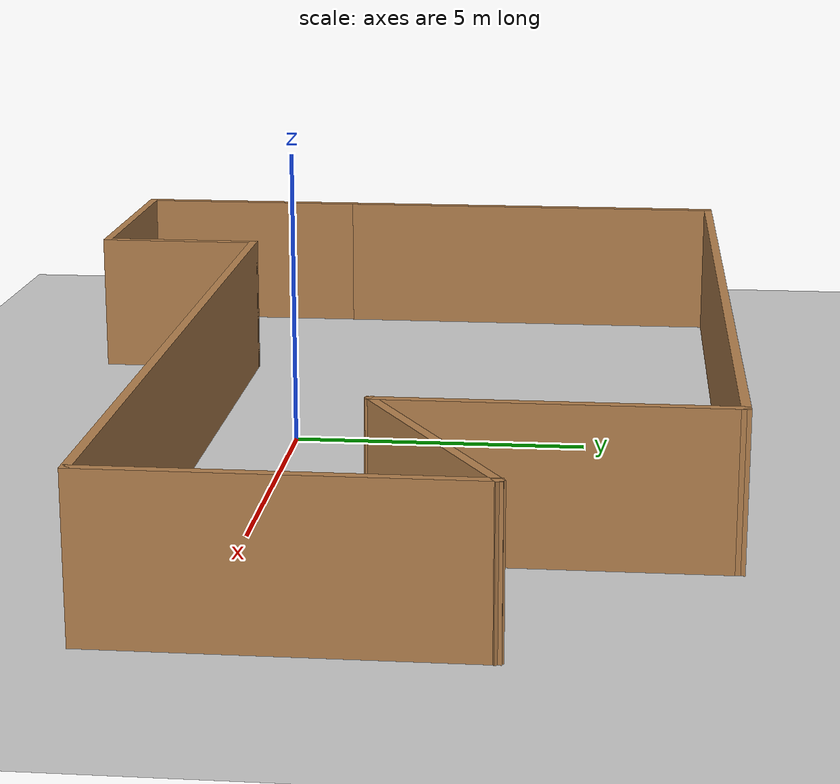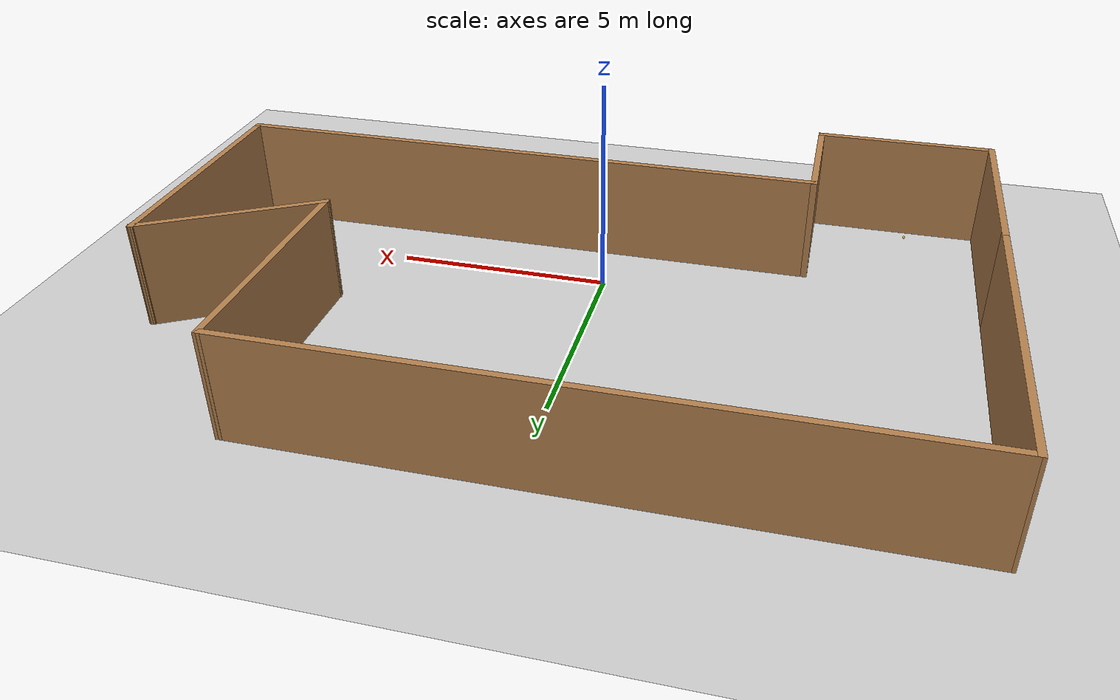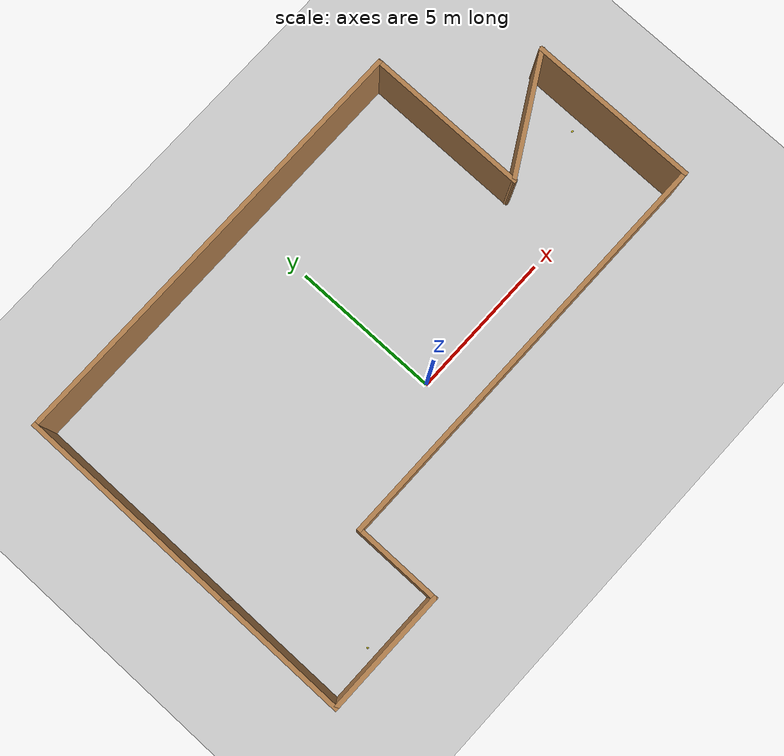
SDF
<sdf version="1.7">
 <world name="default">
  <light name="sun" type="directional">
   <pose>0 0 10 0 -0 0</pose>
   <diffuse>0.8 0.8 0.8 1</diffuse>
   <specular>0.2 0.2 0.2 1</specular>
   <attenuation>
    <range>1000</range>
    <constant>0.9</constant>
    <linear>0.01</linear>
    <quadratic>0.001</quadratic>
   </attenuation>
   <direction>-0.5 0.1 -0.9</direction>
   <spot><inner_angle>0</inner_angle><outer_angle>0</outer_angle><falloff>0</falloff></spot>
  </light>
  <model name="ground_plane">
   <static>1</static>
   <link name="link">
    <collision name="collision">
     <geometry><plane><normal>0 0 1</normal><size>100 100</size></plane></geometry>
     <surface>
      <contact><collide_bitmask>65535</collide_bitmask></contact>
      <friction><ode><mu>100</mu><mu2>50</mu2></ode></friction>
     </surface>
    </collision>
    <visual name="visual">
     <cast_shadows>0</cast_shadows>
     <geometry><plane><normal>0 0 1</normal><size>100 100</size></plane></geometry>
     <material>
      <script><uri>file://media/materials/scripts/gazebo.material</uri><name>Gazebo/Grey</name></script>
     </material>
    </visual>
   </link>
  </model>
  <gravity>0 0 -9.8</gravity>
  <magnetic_field>6e-06 2.3e-05 -4.2e-05</magnetic_field>
  <atmosphere type="adiabatic"/>
  <physics type="ode">
   <max_step_size>0.001</max_step_size>
   <real_time_factor>1</real_time_factor>
   <real_time_update_rate>1000</real_time_update_rate>
  </physics>
  <scene><ambient>0.4 0.4 0.4 1</ambient><background>0.7 0.7 0.7 1</background><shadows>1</shadows></scene>
  <audio><device>default</device></audio>
  <spherical_coordinates>
   <surface_model>EARTH_WGS84</surface_model>
   <latitude_deg>0</latitude_deg>
   <longitude_deg>0</longitude_deg>
   <elevation>0</elevation>
   <heading_deg>0</heading_deg>
  </spherical_coordinates>
  <model name="custom_room">
   <pose>0.374615 1.5009 0 0 -0 0</pose>
   <link name="Wall_10">
    <collision name="Wall_10_Collision">
     <geometry><box><size>14.25 0.15 2.5</size></box></geometry>
     <pose>0 0 1.25 0 -0 0</pose>
    </collision>
    <visual name="Wall_10_Visual">
     <pose>0 0 1.25 0 -0 0</pose>
     <geometry><box><size>14.25 0.15 2.5</size></box></geometry>
     <material>
      <script><uri>file://media/materials/scripts/gazebo.material</uri><name>Gazebo/Wood</name></script>
      <ambient>1 1 1 1</ambient>
     </material>
     <meta><layer>0</layer></meta>
    </visual>
    <pose>2.0364 -3.02513 0 0 -0 0</pose>
   </link>
   <link name="Wall_11">
    <collision name="Wall_11_Collision">
     <geometry><box><size>5.75 0.15 2.5</size></box></geometry>
     <pose>0 0 1.25 0 -0 0</pose>
    </collision>
    <visual name="Wall_11_Visual">
     <pose>0 0 1.25 0 -0 0</pose>
     <geometry><box><size>5.75 0.15 2.5</size></box></geometry>
     <material>
      <script><uri>file://media/materials/scripts/gazebo.material</uri><name>Gazebo/Wood</name></script>
      <ambient>1 1 1 1</ambient>
     </material>
     <meta><layer>0</layer></meta>
    </visual>
    <pose>9.0864 -0.225128 0 0 -0 1.5708</pose>
   </link>
   <link name="Wall_12">
    <collision name="Wall_12_Collision">
     <geometry><box><size>4.25 0.15 2.5</size></box></geometry>
     <pose>0 0 1.25 0 -0 0</pose>
    </collision>
    <visual name="Wall_12_Visual">
     <pose>0 0 1.25 0 -0 0</pose>
     <geometry><box><size>4.25 0.15 2.5</size></box></geometry>
     <material>
      <script><uri>file://media/materials/scripts/gazebo.material</uri><name>Gazebo/Wood</name></script>
      <ambient>1 1 1 1</ambient>
     </material>
     <meta><layer>0</layer></meta>
    </visual>
    <pose>7.31105 1.54987 0 0 -0 -2.61799</pose>
   </link>
   <link name="Wall_14">
    <collision name="Wall_14_Collision">
     <geometry><box><size>5.5 0.15 2.5</size></box></geometry>
     <pose>0 0 1.25 0 -0 0</pose>
    </collision>
    <visual name="Wall_14_Visual">
     <pose>0 0 1.25 0 -0 0</pose>
     <geometry><box><size>5.5 0.15 2.5</size></box></geometry>
     <material>
      <script><uri>file://media/materials/scripts/gazebo.material</uri><name>Gazebo/Wood</name></script>
      <ambient>1 1 1 1</ambient>
     </material>
     <meta><layer>0</layer></meta>
    </visual>
    <pose>5.5357 3.19987 0 0 -0 1.5708</pose>
   </link>
   <link name="Wall_18">
    <collision name="Wall_18_Collision">
     <geometry><box><size>7.5 0.15 2.5</size></box></geometry>
     <pose>0 0 1.25 0 -0 0</pose>
    </collision>
    <visual name="Wall_18_Visual">
     <pose>0 0 1.25 0 -0 0</pose>
     <geometry><box><size>7.5 0.15 2.5</size></box></geometry>
     <material>
      <script><uri>file://media/materials/scripts/gazebo.material</uri><name>Gazebo/Wood</name></script>
      <ambient>1 1 1 1</ambient>
     </material>
     <meta><layer>0</layer></meta>
    </visual>
    <pose>-9.1136 2.14987 0 0 -0 1.5708</pose>
   </link>
   <link name="Wall_19">
    <collision name="Wall_19_Collision">
     <geometry><box><size>14.7994 0.15 2.5</size></box></geometry>
     <pose>0 0 1.25 0 -0 0</pose>
    </collision>
    <visual name="Wall_19_Visual">
     <pose>0 0 1.25 0 -0 0</pose>
     <geometry><box><size>14.7994 0.15 2.5</size></box></geometry>
     <material>
      <script><uri>file://media/materials/scripts/gazebo.material</uri><name>Gazebo/Wood</name></script>
      <ambient>1 1 1 1</ambient>
     </material>
     <meta><layer>0</layer></meta>
    </visual>
    <pose>-1.78895 5.84987 0 0 -0 0.003413</pose>
   </link>
   <link name="Wall_6">
    <collision name="Wall_6_Collision">
     <geometry><box><size>4.5 0.15 2.5</size></box></geometry>
     <pose>0 0 1.25 0 -0 0</pose>
    </collision>
    <visual name="Wall_6_Visual">
     <pose>0 0 1.25 0 -0 0</pose>
     <geometry><box><size>4.5 0.15 2.5</size></box></geometry>
     <material>
      <script><uri>file://media/materials/scripts/gazebo.material</uri><name>Gazebo/Wood</name></script>
      <ambient>1 1 1 1</ambient>
     </material>
     <meta><layer>0</layer></meta>
    </visual>
    <pose>-9.1136 -3.70013 0 0 -0 -1.5708</pose>
   </link>
   <link name="Wall_8">
    <collision name="Wall_8_Collision">
     <geometry><box><size>4.25 0.15 2.5</size></box></geometry>
     <pose>0 0 1.25 0 -0 0</pose>
    </collision>
    <visual name="Wall_8_Visual">
     <pose>0 0 1.25 0 -0 0</pose>
     <geometry><box><size>4.25 0.15 2.5</size></box></geometry>
     <material>
      <script><uri>file://media/materials/scripts/gazebo.material</uri><name>Gazebo/Wood</name></script>
      <ambient>1 1 1 1</ambient>
     </material>
     <meta><layer>0</layer></meta>
    </visual>
    <pose>-7.0636 -5.87513 0 0 -0 0</pose>
   </link>
   <link name="Wall_9">
    <collision name="Wall_9_Collision">
     <geometry><box><size>3 0.15 2.5</size></box></geometry>
     <pose>0 0 1.25 0 -0 0</pose>
    </collision>
    <visual name="Wall_9_Visual">
     <pose>0 0 1.25 0 -0 0</pose>
     <geometry><box><size>3 0.15 2.5</size></box></geometry>
     <material>
      <script><uri>file://media/materials/scripts/gazebo.material</uri><name>Gazebo/Wood</name></script>
      <ambient>1 1 1 1</ambient>
     </material>
     <meta><layer>0</layer></meta>
    </visual>
    <pose>-5.0136 -4.45013 0 0 -0 1.5708</pose>
   </link>
   <static>1</static>
  </model>
  <model name="tennis_ball">
   <link name="link">
    <inertial>
     <mass>1</mass>
     <inertia><ixx>0.1</ixx><ixy>0</ixy><ixz>0</ixz><iyy>0.1</iyy><iyz>0</iyz><izz>0.1</izz></inertia>
    </inertial>
    <visual name="visual">
     <geometry><sphere><radius>0.033</radius></sphere></geometry>
     <material>
      <script><name>Gazebo/Yellow</name><uri>file://media/materials/scripts/gazebo.material</uri></script>
      <shader type="pixel"><normal_map>__default__</normal_map></shader>
      <ambient>1 1 0 1</ambient>
      <diffuse>1 1 0 1</diffuse>
      <emissive>0 0 0 1</emissive>
     </material>
    </visual>
    <collision name="collision">
     <geometry><sphere><radius>0.033</radius></sphere></geometry>
     <surface>
      <friction>
       <ode><mu>1</mu><mu2>1</mu2><fdir1>0 0 0</fdir1><slip1>0</slip1><slip2>0</slip2></ode>
       <torsional>
        <coefficient>1</coefficient>
        <patch_radius>0</patch_radius>
        <surface_radius>0</surface_radius>
        <use_patch_radius>1</use_patch_radius>
        <ode><slip>0</slip></ode>
       </torsional>
      </friction>
      <bounce><restitution_coefficient>0</restitution_coefficient><threshold>1e+06</threshold></bounce>
      <contact>
       <collide_without_contact>0</collide_without_contact>
       <collide_without_contact_bitmask>1</collide_without_contact_bitmask>
       <collide_bitmask>1</collide_bitmask>
       <ode>
        <soft_cfm>0</soft_cfm>
        <soft_erp>0.2</soft_erp>
        <kp>1e+13</kp>
        <kd>1</kd>
        <max_vel>0.01</max_vel>
        <min_depth>0</min_depth>
       </ode>
       <bullet>
        <split_impulse>1</split_impulse>
        <split_impulse_penetration_threshold>-0.01</split_impulse_penetration_threshold>
        <soft_cfm>0</soft_cfm>
        <soft_erp>0.2</soft_erp>
        <kp>1e+13</kp>
        <kd>1</kd>
       </bullet>
      </contact>
     </surface>
    </collision>
   </link>
   <static>0</static>
   <pose>-7 -4 0.033 0 -0 0</pose>
  </model>
  <model name="tennis_ball_0">
   <link name="link">
    <inertial>
     <mass>1</mass>
     <inertia><ixx>0.1</ixx><ixy>0</ixy><ixz>0</ixz><iyy>0.1</iyy><iyz>0</iyz><izz>0.1</izz></inertia>
    </inertial>
    <visual name="visual">
     <geometry><sphere><radius>0.033</radius></sphere></geometry>
     <material>
      <script><name>Gazebo/Yellow</name><uri>file://media/materials/scripts/gazebo.material</uri></script>
      <shader type="pixel"><normal_map>__default__</normal_map></shader>
      <ambient>1 1 0 1</ambient>
      <diffuse>1 1 0 1</diffuse>
      <emissive>0 0 0 1</emissive>
     </material>
    </visual>
    <collision name="collision">
     <geometry><sphere><radius>0.033</radius></sphere></geometry>
     <surface>
      <friction>
       <ode><mu>1</mu><mu2>1</mu2><fdir1>0 0 0</fdir1><slip1>0</slip1><slip2>0</slip2></ode>
       <torsional>
        <coefficient>1</coefficient>
        <patch_radius>0</patch_radius>
        <surface_radius>0</surface_radius>
        <use_patch_radius>1</use_patch_radius>
        <ode><slip>0</slip></ode>
       </torsional>
      </friction>
      <bounce><restitution_coefficient>0</restitution_coefficient><threshold>1e+06</threshold></bounce>
      <contact>
       <collide_without_contact>0</collide_without_contact>
       <collide_without_contact_bitmask>1</collide_without_contact_bitmask>
       <collide_bitmask>1</collide_bitmask>
       <ode>
        <soft_cfm>0</soft_cfm>
        <soft_erp>0.2</soft_erp>
        <kp>1e+13</kp>
        <kd>1</kd>
        <max_vel>0.01</max_vel>
        <min_depth>0</min_depth>
       </ode>
       <bullet>
        <split_impulse>1</split_impulse>
        <split_impulse_penetration_threshold>-0.01</split_impulse_penetration_threshold>
        <soft_cfm>0</soft_cfm>
        <soft_erp>0.2</soft_erp>
        <kp>1e+13</kp>
        <kd>1</kd>
       </bullet>
      </contact>
     </surface>
    </collision>
   </link>
   <static>0</static>
   <pose>9 2 0.033 0 -0 0</pose>
  </model>
 </world>
</sdf>
